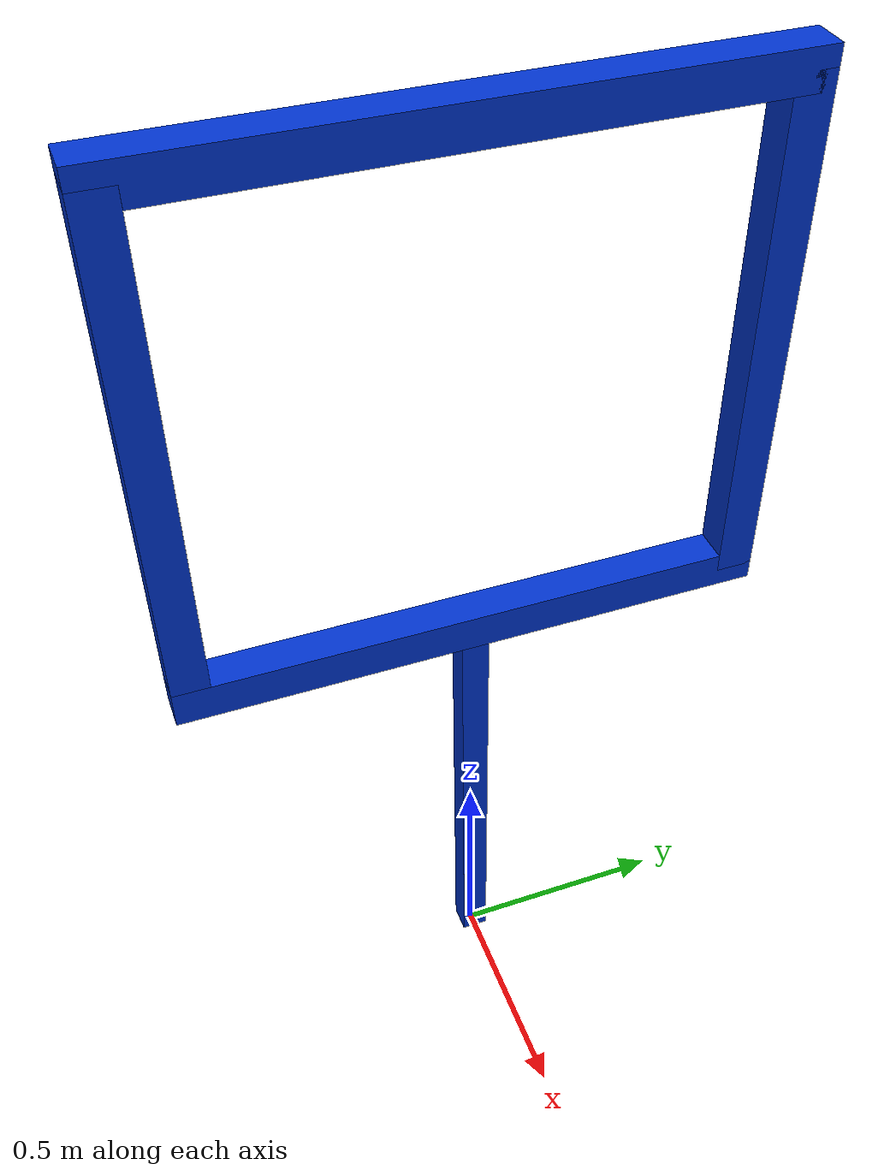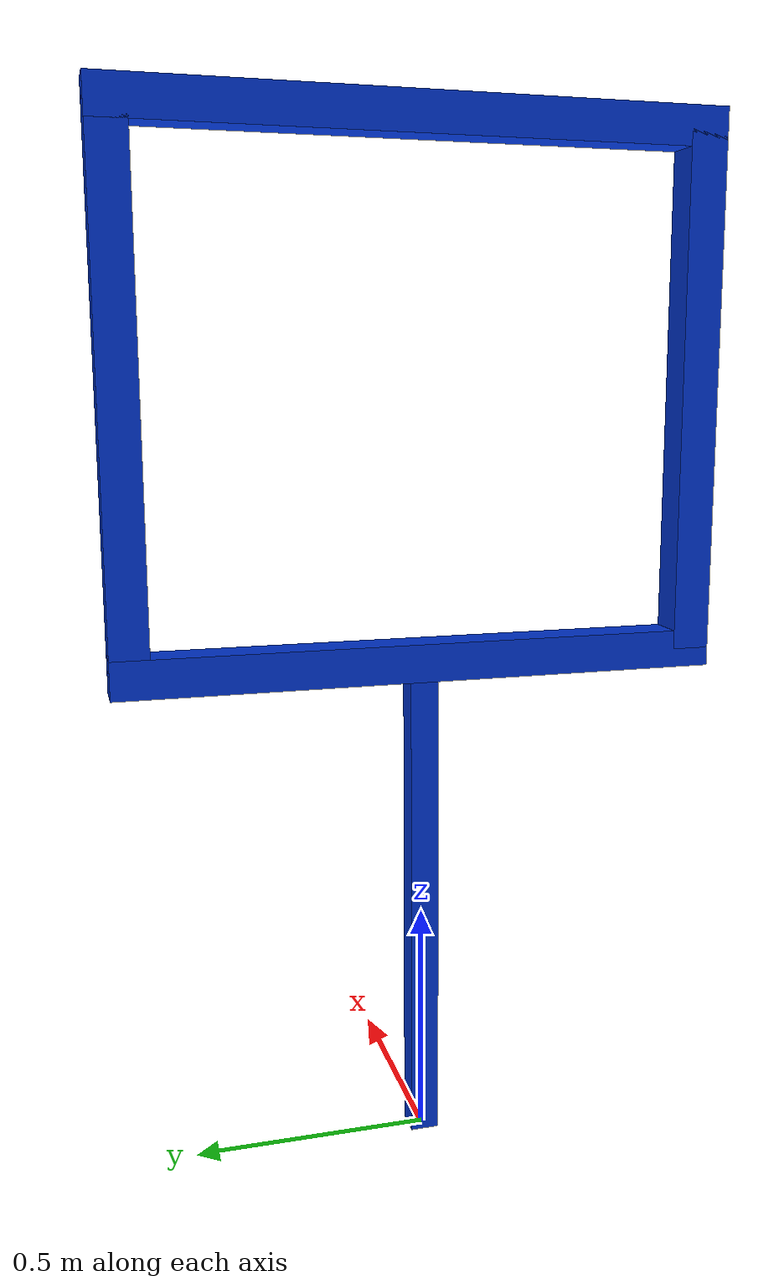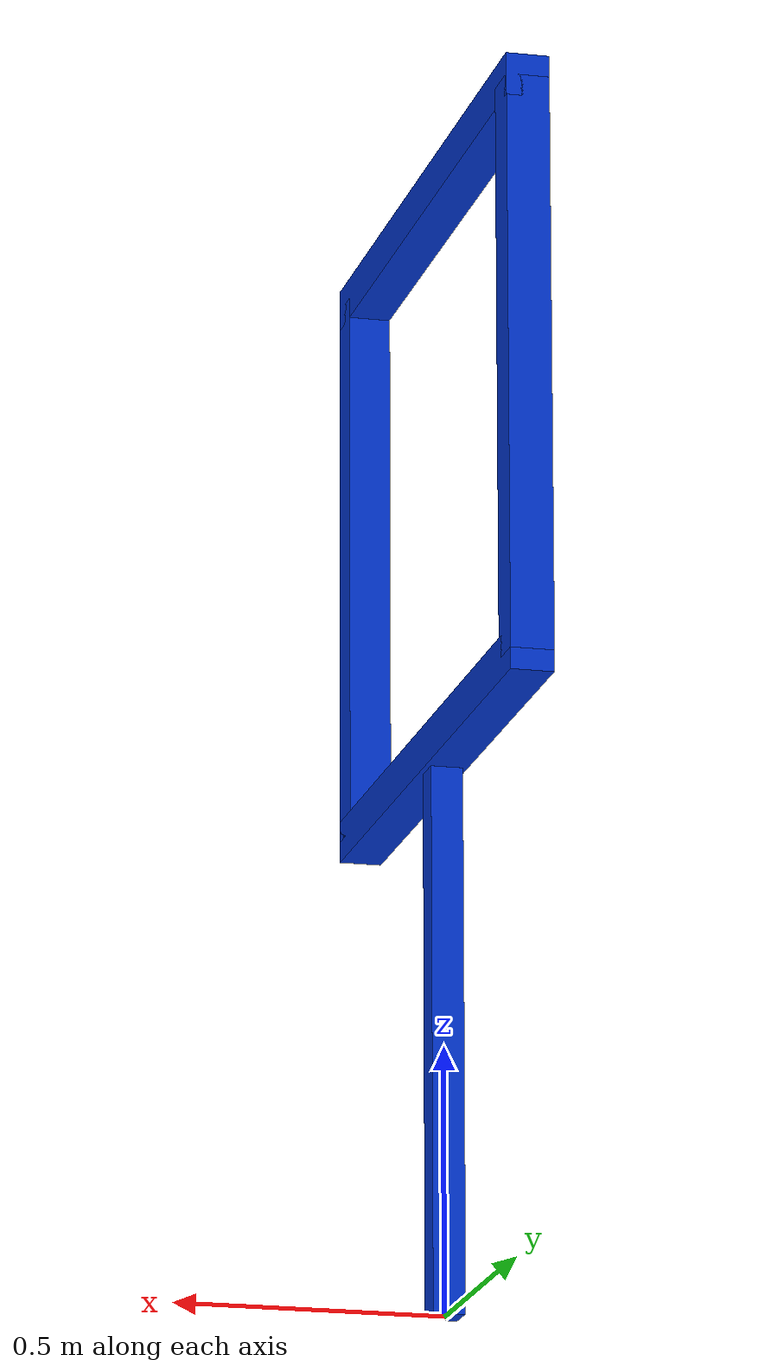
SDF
<?xml version="1.0" encoding="UTF-8"?>
<sdf version="1.9">
  <model name="robocup_obs1_square_gate">
    <static>true</static>
    <link name="left_bar">
      <pose>0 -0.60 1.60 0 0 0</pose>
      <visual name="visual">
        <geometry><box><size>0.08 0.08 1.08</size></box></geometry>
        <material><diffuse>0.0 0.20 0.80 1</diffuse></material>
      </visual>
    </link>
    <link name="right_bar">
      <pose>0 0.60 1.60 0 0 0</pose>
      <visual name="visual">
        <geometry><box><size>0.08 0.08 1.08</size></box></geometry>
        <material><diffuse>0.0 0.20 0.80 1</diffuse></material>
      </visual>
    </link>
    <link name="top_bar">
      <pose>0 0 2.14 0 0 0</pose>
      <visual name="visual">
        <geometry><box><size>0.08 1.28 0.08</size></box></geometry>
        <material><diffuse>0.0 0.20 0.80 1</diffuse></material>
      </visual>
    </link>
    <link name="bottom_bar">
      <pose>0 0 1.06 0 0 0</pose>
      <visual name="visual">
        <geometry><box><size>0.08 1.28 0.08</size></box></geometry>
        <material><diffuse>0.0 0.20 0.80 1</diffuse></material>
      </visual>
    </link>
    <link name="support">
      <pose>0 0 0.53 0 0 0</pose>
      <visual name="visual">
        <geometry><box><size>0.06 0.06 1.06</size></box></geometry>
        <material><diffuse>0.0 0.20 0.80 1</diffuse></material>
      </visual>
    </link>
  </model>
</sdf>
